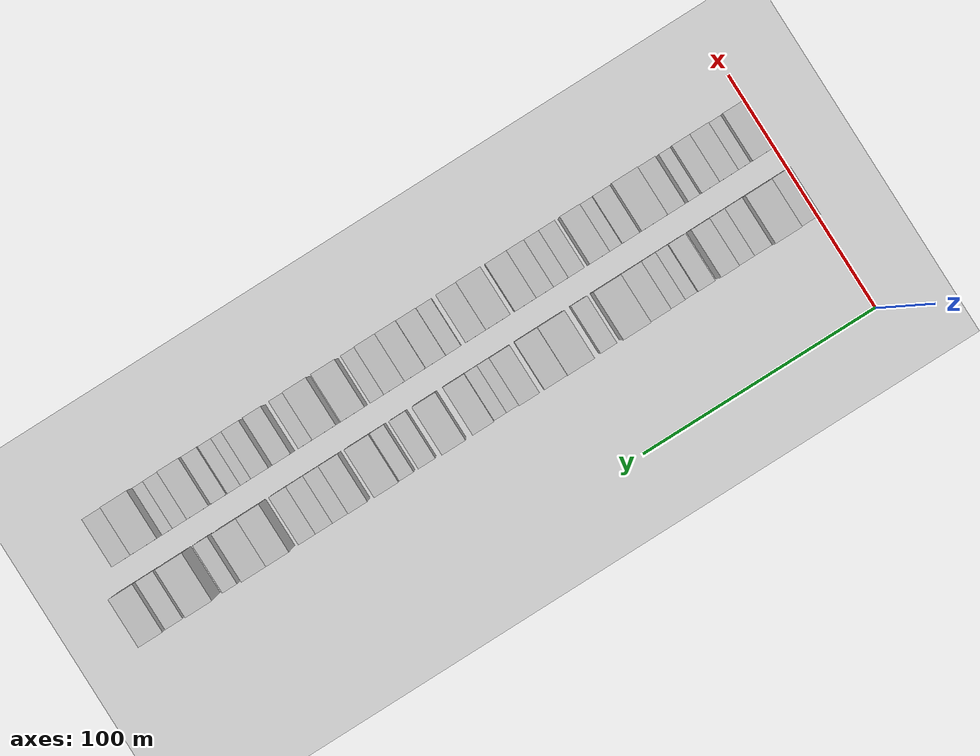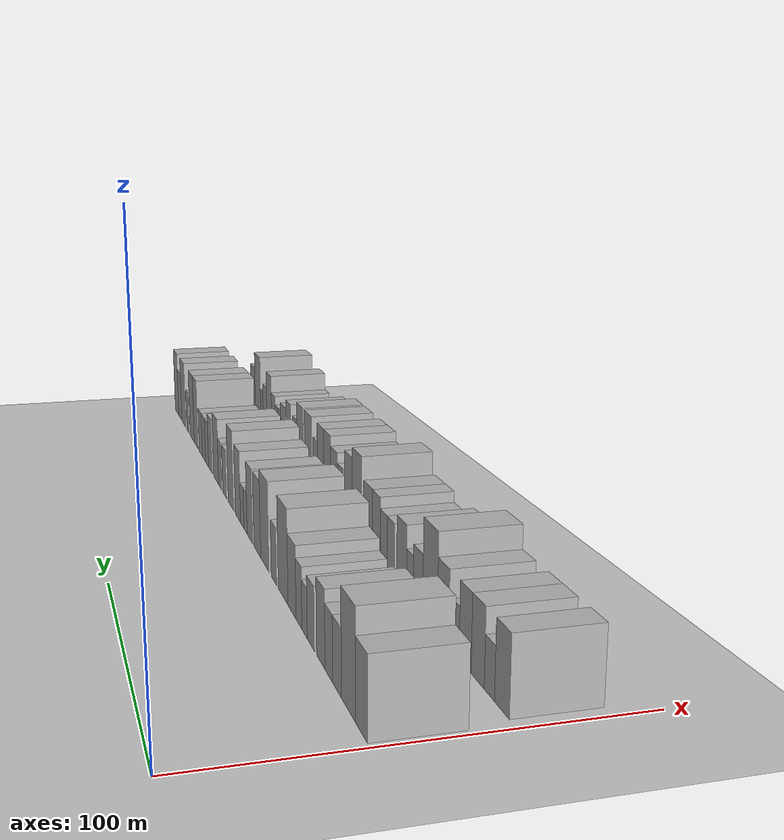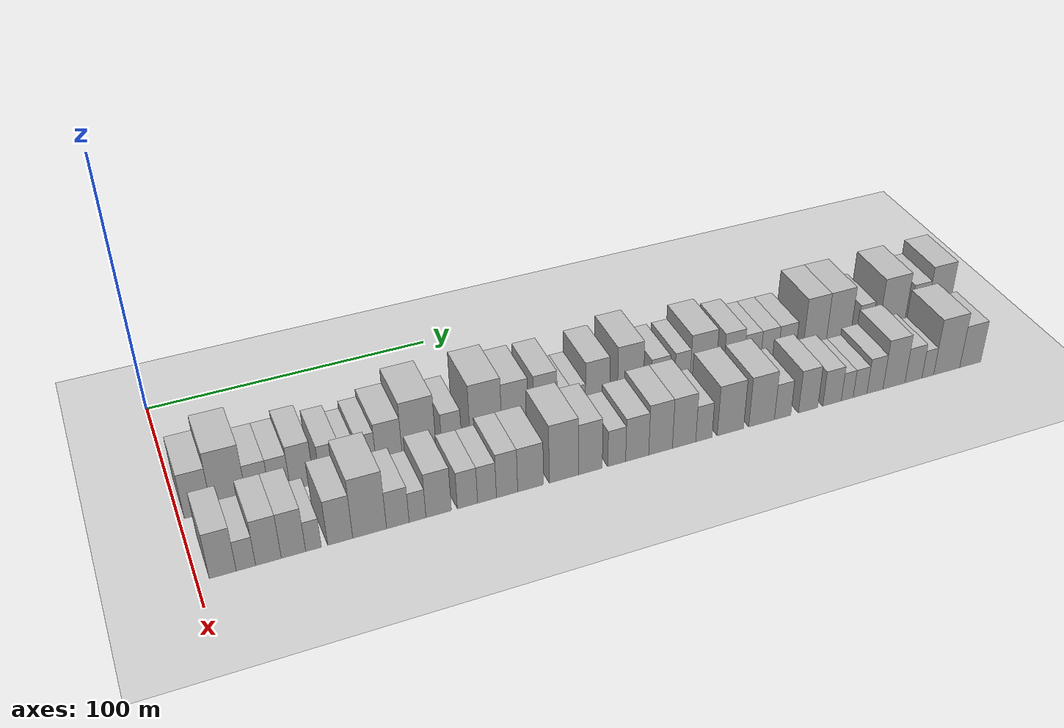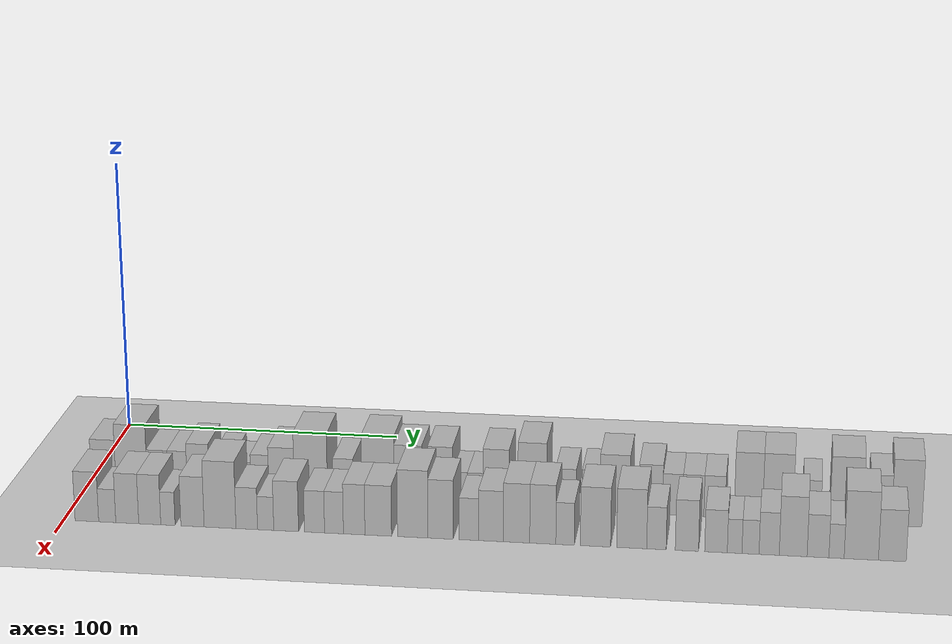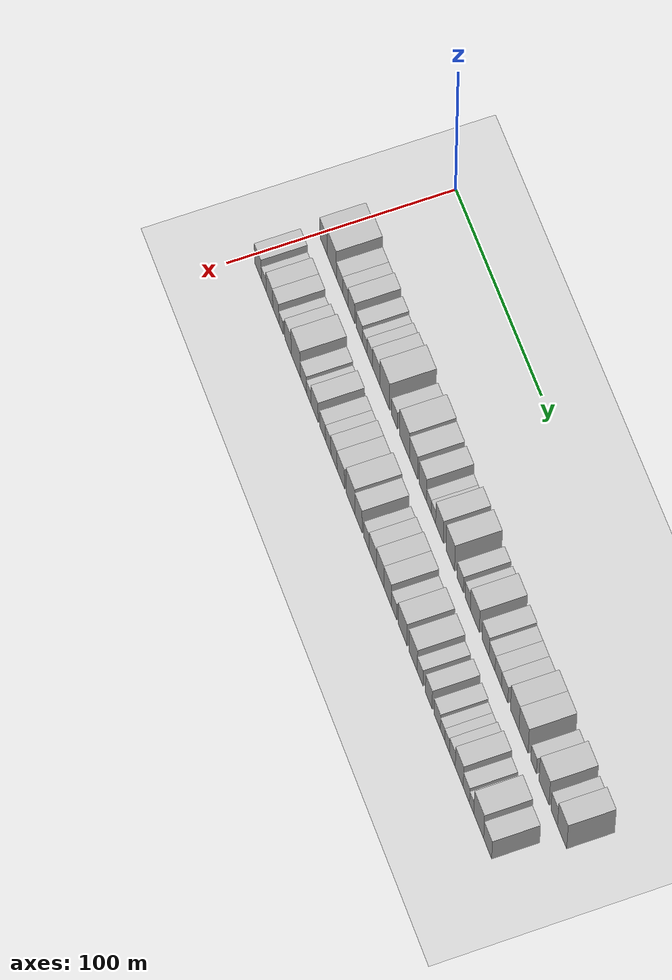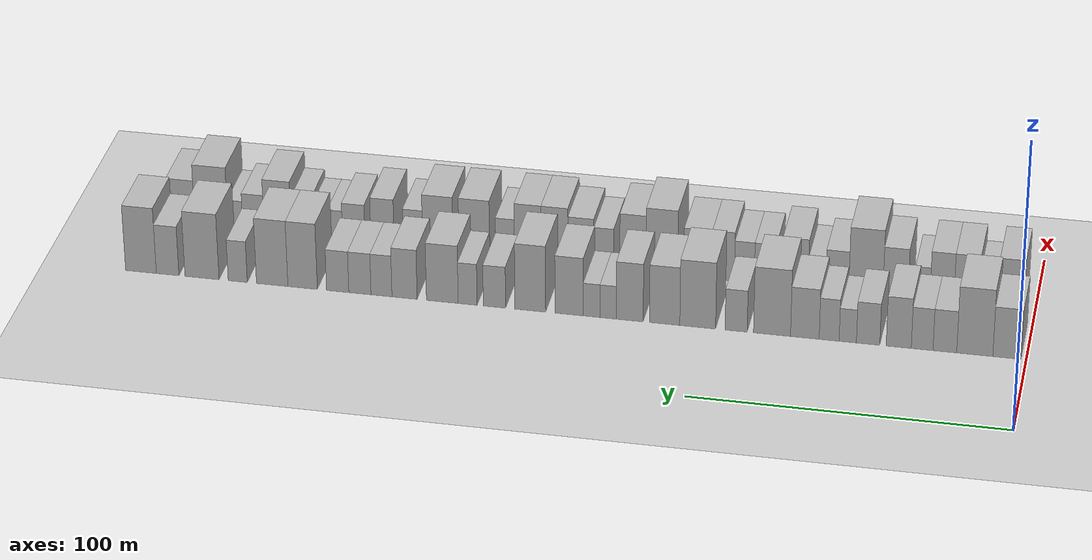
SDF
<sdf version="1.6">
 <world name="default">
  <include>
   <name>ground_plane_2</name>
   <uri>model://HANNAS_ground_plane</uri>
   <pose>100 0 0  0 0 0</pose>
  </include>
  <model name="building_34">
   <static>1</static>
   <pose>50.0000 6.1473 0 0.000000 0.000000 0.000000</pose>
   <link name="link">
    <pose>0 0 9.00 0 0 0</pose>
    <collision name="collision"><geometry><box><size>20.0000 8.7410 18.0000</size></box></geometry></collision>
    <visual name="visual">
     <cast_shadows>0</cast_shadows>
     <geometry><box><size>20.0000 8.7410 18.0000</size></box></geometry>
     <material>
      <script>
       <uri>model://HANNAS_wall/materials/scripts</uri>
       <uri>model://HANNAS_wall/materials/textures</uri>
       <name>vrc/HANNAS_wall</name>
      </script>
     </material>
    </visual>
   </link>
  </model>
  <model name="building_35">
   <static>1</static>
   <pose>50.0000 16.1103 0 0.000000 0.000000 0.000000</pose>
   <link name="link">
    <pose>0 0 12.00 0 0 0</pose>
    <collision name="collision"><geometry><box><size>20.0000 11.1851 24.0000</size></box></geometry></collision>
    <visual name="visual">
     <cast_shadows>0</cast_shadows>
     <geometry><box><size>20.0000 11.1851 24.0000</size></box></geometry>
     <material>
      <script>
       <uri>model://HANNAS_wall/materials/scripts</uri>
       <uri>model://HANNAS_wall/materials/textures</uri>
       <name>vrc/HANNAS_wall</name>
      </script>
     </material>
    </visual>
   </link>
  </model>
  <model name="building_36">
   <static>1</static>
   <pose>50.0000 25.3792 0 0.000000 0.000000 0.000000</pose>
   <link name="link">
    <pose>0 0 7.50 0 0 0</pose>
    <collision name="collision"><geometry><box><size>20.0000 7.3526 15.0000</size></box></geometry></collision>
    <visual name="visual">
     <cast_shadows>0</cast_shadows>
     <geometry><box><size>20.0000 7.3526 15.0000</size></box></geometry>
     <material>
      <script>
       <uri>model://HANNAS_wall/materials/scripts</uri>
       <uri>model://HANNAS_wall/materials/textures</uri>
       <name>vrc/HANNAS_wall</name>
      </script>
     </material>
    </visual>
   </link>
  </model>
  <model name="building_37">
   <static>1</static>
   <pose>50.0000 32.4388 0 0.000000 0.000000 0.000000</pose>
   <link name="link">
    <pose>0 0 7.50 0 0 0</pose>
    <collision name="collision"><geometry><box><size>20.0000 6.7667 15.0000</size></box></geometry></collision>
    <visual name="visual">
     <cast_shadows>0</cast_shadows>
     <geometry><box><size>20.0000 6.7667 15.0000</size></box></geometry>
     <material>
      <script>
       <uri>model://HANNAS_wall/materials/scripts</uri>
       <uri>model://HANNAS_wall/materials/textures</uri>
       <name>vrc/HANNAS_wall</name>
      </script>
     </material>
    </visual>
   </link>
  </model>
  <model name="building_38">
   <static>1</static>
   <pose>50.0000 39.7253 0 0.000000 0.000000 0.000000</pose>
   <link name="link">
    <pose>0 0 9.00 0 0 0</pose>
    <collision name="collision"><geometry><box><size>20.0000 7.8064 18.0000</size></box></geometry></collision>
    <visual name="visual">
     <cast_shadows>0</cast_shadows>
     <geometry><box><size>20.0000 7.8064 18.0000</size></box></geometry>
     <material>
      <script>
       <uri>model://HANNAS_wall/materials/scripts</uri>
       <uri>model://HANNAS_wall/materials/textures</uri>
       <name>vrc/HANNAS_wall</name>
      </script>
     </material>
    </visual>
   </link>
  </model>
  <model name="building_39">
   <static>1</static>
   <pose>50.0000 49.2765 0 0.000000 0.000000 0.000000</pose>
   <link name="link">
    <pose>0 0 7.50 0 0 0</pose>
    <collision name="collision"><geometry><box><size>20.0000 7.2959 15.0000</size></box></geometry></collision>
    <visual name="visual">
     <cast_shadows>0</cast_shadows>
     <geometry><box><size>20.0000 7.2959 15.0000</size></box></geometry>
     <material>
      <script>
       <uri>model://HANNAS_wall/materials/scripts</uri>
       <uri>model://HANNAS_wall/materials/textures</uri>
       <name>vrc/HANNAS_wall</name>
      </script>
     </material>
    </visual>
   </link>
  </model>
  <model name="building_40">
   <static>1</static>
   <pose>50.0000 55.6252 0 0.000000 0.000000 0.000000</pose>
   <link name="link">
    <pose>0 0 6.00 0 0 0</pose>
    <collision name="collision"><geometry><box><size>20.0000 5.4015 12.0000</size></box></geometry></collision>
    <visual name="visual">
     <cast_shadows>0</cast_shadows>
     <geometry><box><size>20.0000 5.4015 12.0000</size></box></geometry>
     <material>
      <script>
       <uri>model://HANNAS_wall/materials/scripts</uri>
       <uri>model://HANNAS_wall/materials/textures</uri>
       <name>vrc/HANNAS_wall</name>
      </script>
     </material>
    </visual>
   </link>
  </model>
  <model name="building_41">
   <static>1</static>
   <pose>50.0000 61.4513 0 0.000000 0.000000 0.000000</pose>
   <link name="link">
    <pose>0 0 7.50 0 0 0</pose>
    <collision name="collision"><geometry><box><size>20.0000 6.2506 15.0000</size></box></geometry></collision>
    <visual name="visual">
     <cast_shadows>0</cast_shadows>
     <geometry><box><size>20.0000 6.2506 15.0000</size></box></geometry>
     <material>
      <script>
       <uri>model://HANNAS_wall/materials/scripts</uri>
       <uri>model://HANNAS_wall/materials/textures</uri>
       <name>vrc/HANNAS_wall</name>
      </script>
     </material>
    </visual>
   </link>
  </model>
  <model name="building_42">
   <static>1</static>
   <pose>50.0000 69.0681 0 0.000000 0.000000 0.000000</pose>
   <link name="link">
    <pose>0 0 9.00 0 0 0</pose>
    <collision name="collision"><geometry><box><size>20.0000 8.9831 18.0000</size></box></geometry></collision>
    <visual name="visual">
     <cast_shadows>0</cast_shadows>
     <geometry><box><size>20.0000 8.9831 18.0000</size></box></geometry>
     <material>
      <script>
       <uri>model://HANNAS_wall/materials/scripts</uri>
       <uri>model://HANNAS_wall/materials/textures</uri>
       <name>vrc/HANNAS_wall</name>
      </script>
     </material>
    </visual>
   </link>
  </model>
  <model name="building_43">
   <static>1</static>
   <pose>50.0000 79.3780 0 0.000000 0.000000 0.000000</pose>
   <link name="link">
    <pose>0 0 12.00 0 0 0</pose>
    <collision name="collision"><geometry><box><size>20.0000 11.6367 24.0000</size></box></geometry></collision>
    <visual name="visual">
     <cast_shadows>0</cast_shadows>
     <geometry><box><size>20.0000 11.6367 24.0000</size></box></geometry>
     <material>
      <script>
       <uri>model://HANNAS_wall/materials/scripts</uri>
       <uri>model://HANNAS_wall/materials/textures</uri>
       <name>vrc/HANNAS_wall</name>
      </script>
     </material>
    </visual>
   </link>
  </model>
  <model name="building_44">
   <static>1</static>
   <pose>50.0000 90.6786 0 0.000000 0.000000 0.000000</pose>
   <link name="link">
    <pose>0 0 7.50 0 0 0</pose>
    <collision name="collision"><geometry><box><size>20.0000 6.9645 15.0000</size></box></geometry></collision>
    <visual name="visual">
     <cast_shadows>0</cast_shadows>
     <geometry><box><size>20.0000 6.9645 15.0000</size></box></geometry>
     <material>
      <script>
       <uri>model://HANNAS_wall/materials/scripts</uri>
       <uri>model://HANNAS_wall/materials/textures</uri>
       <name>vrc/HANNAS_wall</name>
      </script>
     </material>
    </visual>
   </link>
  </model>
  <model name="building_45">
   <static>1</static>
   <pose>50.0000 102.8169 0 0.000000 0.000000 0.000000</pose>
   <link name="link">
    <pose>0 0 12.00 0 0 0</pose>
    <collision name="collision"><geometry><box><size>20.0000 11.3121 24.0000</size></box></geometry></collision>
    <visual name="visual">
     <cast_shadows>0</cast_shadows>
     <geometry><box><size>20.0000 11.3121 24.0000</size></box></geometry>
     <material>
      <script>
       <uri>model://HANNAS_wall/materials/scripts</uri>
       <uri>model://HANNAS_wall/materials/textures</uri>
       <name>vrc/HANNAS_wall</name>
      </script>
     </material>
    </visual>
   </link>
  </model>
  <model name="building_46">
   <static>1</static>
   <pose>50.0000 113.2822 0 0.000000 0.000000 0.000000</pose>
   <link name="link">
    <pose>0 0 10.50 0 0 0</pose>
    <collision name="collision"><geometry><box><size>20.0000 9.6185 21.0000</size></box></geometry></collision>
    <visual name="visual">
     <cast_shadows>0</cast_shadows>
     <geometry><box><size>20.0000 9.6185 21.0000</size></box></geometry>
     <material>
      <script>
       <uri>model://HANNAS_wall/materials/scripts</uri>
       <uri>model://HANNAS_wall/materials/textures</uri>
       <name>vrc/HANNAS_wall</name>
      </script>
     </material>
    </visual>
   </link>
  </model>
  <model name="building_47">
   <static>1</static>
   <pose>50.0000 124.3903 0 0.000000 0.000000 0.000000</pose>
   <link name="link">
    <pose>0 0 10.50 0 0 0</pose>
    <collision name="collision"><geometry><box><size>20.0000 8.5976 21.0000</size></box></geometry></collision>
    <visual name="visual">
     <cast_shadows>0</cast_shadows>
     <geometry><box><size>20.0000 8.5976 21.0000</size></box></geometry>
     <material>
      <script>
       <uri>model://HANNAS_wall/materials/scripts</uri>
       <uri>model://HANNAS_wall/materials/textures</uri>
       <name>vrc/HANNAS_wall</name>
      </script>
     </material>
    </visual>
   </link>
  </model>
  <model name="building_48">
   <static>1</static>
   <pose>50.0000 131.2756 0 0.000000 0.000000 0.000000</pose>
   <link name="link">
    <pose>0 0 6.00 0 0 0</pose>
    <collision name="collision"><geometry><box><size>20.0000 5.1731 12.0000</size></box></geometry></collision>
    <visual name="visual">
     <cast_shadows>0</cast_shadows>
     <geometry><box><size>20.0000 5.1731 12.0000</size></box></geometry>
     <material>
      <script>
       <uri>model://HANNAS_wall/materials/scripts</uri>
       <uri>model://HANNAS_wall/materials/textures</uri>
       <name>vrc/HANNAS_wall</name>
      </script>
     </material>
    </visual>
   </link>
  </model>
  <model name="building_49">
   <static>1</static>
   <pose>50.0000 136.5101 0 0.000000 0.000000 0.000000</pose>
   <link name="link">
    <pose>0 0 6.00 0 0 0</pose>
    <collision name="collision"><geometry><box><size>20.0000 5.2959 12.0000</size></box></geometry></collision>
    <visual name="visual">
     <cast_shadows>0</cast_shadows>
     <geometry><box><size>20.0000 5.2959 12.0000</size></box></geometry>
     <material>
      <script>
       <uri>model://HANNAS_wall/materials/scripts</uri>
       <uri>model://HANNAS_wall/materials/textures</uri>
       <name>vrc/HANNAS_wall</name>
      </script>
     </material>
    </visual>
   </link>
  </model>
  <model name="building_50">
   <static>1</static>
   <pose>50.0000 143.6692 0 0.000000 0.000000 0.000000</pose>
   <link name="link">
    <pose>0 0 10.50 0 0 0</pose>
    <collision name="collision"><geometry><box><size>20.0000 9.0223 21.0000</size></box></geometry></collision>
    <visual name="visual">
     <cast_shadows>0</cast_shadows>
     <geometry><box><size>20.0000 9.0223 21.0000</size></box></geometry>
     <material>
      <script>
       <uri>model://HANNAS_wall/materials/scripts</uri>
       <uri>model://HANNAS_wall/materials/textures</uri>
       <name>vrc/HANNAS_wall</name>
      </script>
     </material>
    </visual>
   </link>
  </model>
  <model name="building_51">
   <static>1</static>
   <pose>50.0000 156.0944 0 0.000000 0.000000 0.000000</pose>
   <link name="link">
    <pose>0 0 12.00 0 0 0</pose>
    <collision name="collision"><geometry><box><size>20.0000 9.8281 24.0000</size></box></geometry></collision>
    <visual name="visual">
     <cast_shadows>0</cast_shadows>
     <geometry><box><size>20.0000 9.8281 24.0000</size></box></geometry>
     <material>
      <script>
       <uri>model://HANNAS_wall/materials/scripts</uri>
       <uri>model://HANNAS_wall/materials/textures</uri>
       <name>vrc/HANNAS_wall</name>
      </script>
     </material>
    </visual>
   </link>
  </model>
  <model name="building_52">
   <static>1</static>
   <pose>50.0000 167.5904 0 0.000000 0.000000 0.000000</pose>
   <link name="link">
    <pose>0 0 7.50 0 0 0</pose>
    <collision name="collision"><geometry><box><size>20.0000 7.1639 15.0000</size></box></geometry></collision>
    <visual name="visual">
     <cast_shadows>0</cast_shadows>
     <geometry><box><size>20.0000 7.1639 15.0000</size></box></geometry>
     <material>
      <script>
       <uri>model://HANNAS_wall/materials/scripts</uri>
       <uri>model://HANNAS_wall/materials/textures</uri>
       <name>vrc/HANNAS_wall</name>
      </script>
     </material>
    </visual>
   </link>
  </model>
  <model name="building_53">
   <static>1</static>
   <pose>50.0000 176.2179 0 0.000000 0.000000 0.000000</pose>
   <link name="link">
    <pose>0 0 7.50 0 0 0</pose>
    <collision name="collision"><geometry><box><size>20.0000 6.0910 15.0000</size></box></geometry></collision>
    <visual name="visual">
     <cast_shadows>0</cast_shadows>
     <geometry><box><size>20.0000 6.0910 15.0000</size></box></geometry>
     <material>
      <script>
       <uri>model://HANNAS_wall/materials/scripts</uri>
       <uri>model://HANNAS_wall/materials/textures</uri>
       <name>vrc/HANNAS_wall</name>
      </script>
     </material>
    </visual>
   </link>
  </model>
  <model name="building_54">
   <static>1</static>
   <pose>50.0000 184.3820 0 0.000000 0.000000 0.000000</pose>
   <link name="link">
    <pose>0 0 10.50 0 0 0</pose>
    <collision name="collision"><geometry><box><size>20.0000 10.2371 21.0000</size></box></geometry></collision>
    <visual name="visual">
     <cast_shadows>0</cast_shadows>
     <geometry><box><size>20.0000 10.2371 21.0000</size></box></geometry>
     <material>
      <script>
       <uri>model://HANNAS_wall/materials/scripts</uri>
       <uri>model://HANNAS_wall/materials/textures</uri>
       <name>vrc/HANNAS_wall</name>
      </script>
     </material>
    </visual>
   </link>
  </model>
  <model name="building_55">
   <static>1</static>
   <pose>50.0000 196.5752 0 0.000000 0.000000 0.000000</pose>
   <link name="link">
    <pose>0 0 9.00 0 0 0</pose>
    <collision name="collision"><geometry><box><size>20.0000 8.1494 18.0000</size></box></geometry></collision>
    <visual name="visual">
     <cast_shadows>0</cast_shadows>
     <geometry><box><size>20.0000 8.1494 18.0000</size></box></geometry>
     <material>
      <script>
       <uri>model://HANNAS_wall/materials/scripts</uri>
       <uri>model://HANNAS_wall/materials/textures</uri>
       <name>vrc/HANNAS_wall</name>
      </script>
     </material>
    </visual>
   </link>
  </model>
  <model name="building_56">
   <static>1</static>
   <pose>50.0000 204.0427 0 0.000000 0.000000 0.000000</pose>
   <link name="link">
    <pose>0 0 7.50 0 0 0</pose>
    <collision name="collision"><geometry><box><size>20.0000 6.7856 15.0000</size></box></geometry></collision>
    <visual name="visual">
     <cast_shadows>0</cast_shadows>
     <geometry><box><size>20.0000 6.7856 15.0000</size></box></geometry>
     <material>
      <script>
       <uri>model://HANNAS_wall/materials/scripts</uri>
       <uri>model://HANNAS_wall/materials/textures</uri>
       <name>vrc/HANNAS_wall</name>
      </script>
     </material>
    </visual>
   </link>
  </model>
  <model name="building_57">
   <static>1</static>
   <pose>50.0000 211.0409 0 0.000000 0.000000 0.000000</pose>
   <link name="link">
    <pose>0 0 7.50 0 0 0</pose>
    <collision name="collision"><geometry><box><size>20.0000 7.2108 15.0000</size></box></geometry></collision>
    <visual name="visual">
     <cast_shadows>0</cast_shadows>
     <geometry><box><size>20.0000 7.2108 15.0000</size></box></geometry>
     <material>
      <script>
       <uri>model://HANNAS_wall/materials/scripts</uri>
       <uri>model://HANNAS_wall/materials/textures</uri>
       <name>vrc/HANNAS_wall</name>
      </script>
     </material>
    </visual>
   </link>
  </model>
  <model name="building_58">
   <static>1</static>
   <pose>50.0000 218.2572 0 0.000000 0.000000 0.000000</pose>
   <link name="link">
    <pose>0 0 7.50 0 0 0</pose>
    <collision name="collision"><geometry><box><size>20.0000 7.2218 15.0000</size></box></geometry></collision>
    <visual name="visual">
     <cast_shadows>0</cast_shadows>
     <geometry><box><size>20.0000 7.2218 15.0000</size></box></geometry>
     <material>
      <script>
       <uri>model://HANNAS_wall/materials/scripts</uri>
       <uri>model://HANNAS_wall/materials/textures</uri>
       <name>vrc/HANNAS_wall</name>
      </script>
     </material>
    </visual>
   </link>
  </model>
  <model name="building_59">
   <static>1</static>
   <pose>50.0000 229.6732 0 0.000000 0.000000 0.000000</pose>
   <link name="link">
    <pose>0 0 12.00 0 0 0</pose>
    <collision name="collision"><geometry><box><size>20.0000 9.6101 24.0000</size></box></geometry></collision>
    <visual name="visual">
     <cast_shadows>0</cast_shadows>
     <geometry><box><size>20.0000 9.6101 24.0000</size></box></geometry>
     <material>
      <script>
       <uri>model://HANNAS_wall/materials/scripts</uri>
       <uri>model://HANNAS_wall/materials/textures</uri>
       <name>vrc/HANNAS_wall</name>
      </script>
     </material>
    </visual>
   </link>
  </model>
  <model name="building_60">
   <static>1</static>
   <pose>50.0000 239.6133 0 0.000000 0.000000 0.000000</pose>
   <link name="link">
    <pose>0 0 12.00 0 0 0</pose>
    <collision name="collision"><geometry><box><size>20.0000 10.2700 24.0000</size></box></geometry></collision>
    <visual name="visual">
     <cast_shadows>0</cast_shadows>
     <geometry><box><size>20.0000 10.2700 24.0000</size></box></geometry>
     <material>
      <script>
       <uri>model://HANNAS_wall/materials/scripts</uri>
       <uri>model://HANNAS_wall/materials/textures</uri>
       <name>vrc/HANNAS_wall</name>
      </script>
     </material>
    </visual>
   </link>
  </model>
  <model name="building_61">
   <static>1</static>
   <pose>50.0000 250.8751 0 0.000000 0.000000 0.000000</pose>
   <link name="link">
    <pose>0 0 7.50 0 0 0</pose>
    <collision name="collision"><geometry><box><size>20.0000 6.2536 15.0000</size></box></geometry></collision>
    <visual name="visual">
     <cast_shadows>0</cast_shadows>
     <geometry><box><size>20.0000 6.2536 15.0000</size></box></geometry>
     <material>
      <script>
       <uri>model://HANNAS_wall/materials/scripts</uri>
       <uri>model://HANNAS_wall/materials/textures</uri>
       <name>vrc/HANNAS_wall</name>
      </script>
     </material>
    </visual>
   </link>
  </model>
  <model name="building_62">
   <static>1</static>
   <pose>50.0000 262.5976 0 0.000000 0.000000 0.000000</pose>
   <link name="link">
    <pose>0 0 12.00 0 0 0</pose>
    <collision name="collision"><geometry><box><size>20.0000 11.1915 24.0000</size></box></geometry></collision>
    <visual name="visual">
     <cast_shadows>0</cast_shadows>
     <geometry><box><size>20.0000 11.1915 24.0000</size></box></geometry>
     <material>
      <script>
       <uri>model://HANNAS_wall/materials/scripts</uri>
       <uri>model://HANNAS_wall/materials/textures</uri>
       <name>vrc/HANNAS_wall</name>
      </script>
     </material>
    </visual>
   </link>
  </model>
  <model name="building_63">
   <static>1</static>
   <pose>50.0000 273.9101 0 0.000000 0.000000 0.000000</pose>
   <link name="link">
    <pose>0 0 9.00 0 0 0</pose>
    <collision name="collision"><geometry><box><size>20.0000 7.4335 18.0000</size></box></geometry></collision>
    <visual name="visual">
     <cast_shadows>0</cast_shadows>
     <geometry><box><size>20.0000 7.4335 18.0000</size></box></geometry>
     <material>
      <script>
       <uri>model://HANNAS_wall/materials/scripts</uri>
       <uri>model://HANNAS_wall/materials/textures</uri>
       <name>vrc/HANNAS_wall</name>
      </script>
     </material>
    </visual>
   </link>
  </model>
  <model name="building_64">
   <static>1</static>
   <pose>50.0000 282.6884 0 0.000000 0.000000 0.000000</pose>
   <link name="link">
    <pose>0 0 12.00 0 0 0</pose>
    <collision name="collision"><geometry><box><size>20.0000 10.1232 24.0000</size></box></geometry></collision>
    <visual name="visual">
     <cast_shadows>0</cast_shadows>
     <geometry><box><size>20.0000 10.1232 24.0000</size></box></geometry>
     <material>
      <script>
       <uri>model://HANNAS_wall/materials/scripts</uri>
       <uri>model://HANNAS_wall/materials/textures</uri>
       <name>vrc/HANNAS_wall</name>
      </script>
     </material>
    </visual>
   </link>
  </model>
  <model name="building_97">
   <static>1</static>
   <pose>79.0000 7.9420 0 0.000000 0.000000 0.000000</pose>
   <link name="link">
    <pose>0 0 9.00 0 0 0</pose>
    <collision name="collision"><geometry><box><size>20.0000 8.1596 18.0000</size></box></geometry></collision>
    <visual name="visual">
     <cast_shadows>0</cast_shadows>
     <geometry><box><size>20.0000 8.1596 18.0000</size></box></geometry>
     <material>
      <script>
       <uri>model://HANNAS_wall/materials/scripts</uri>
       <uri>model://HANNAS_wall/materials/textures</uri>
       <name>vrc/HANNAS_wall</name>
      </script>
     </material>
    </visual>
   </link>
  </model>
  <model name="building_98">
   <static>1</static>
   <pose>79.0000 14.9789 0 0.000000 0.000000 0.000000</pose>
   <link name="link">
    <pose>0 0 6.00 0 0 0</pose>
    <collision name="collision"><geometry><box><size>20.0000 5.9142 12.0000</size></box></geometry></collision>
    <visual name="visual">
     <cast_shadows>0</cast_shadows>
     <geometry><box><size>20.0000 5.9142 12.0000</size></box></geometry>
     <material>
      <script>
       <uri>model://HANNAS_wall/materials/scripts</uri>
       <uri>model://HANNAS_wall/materials/textures</uri>
       <name>vrc/HANNAS_wall</name>
      </script>
     </material>
    </visual>
   </link>
  </model>
  <model name="building_99">
   <static>1</static>
   <pose>79.0000 21.8949 0 0.000000 0.000000 0.000000</pose>
   <link name="link">
    <pose>0 0 9.00 0 0 0</pose>
    <collision name="collision"><geometry><box><size>20.0000 7.9178 18.0000</size></box></geometry></collision>
    <visual name="visual">
     <cast_shadows>0</cast_shadows>
     <geometry><box><size>20.0000 7.9178 18.0000</size></box></geometry>
     <material>
      <script>
       <uri>model://HANNAS_wall/materials/scripts</uri>
       <uri>model://HANNAS_wall/materials/textures</uri>
       <name>vrc/HANNAS_wall</name>
      </script>
     </material>
    </visual>
   </link>
  </model>
  <model name="building_100">
   <static>1</static>
   <pose>79.0000 29.6515 0 0.000000 0.000000 0.000000</pose>
   <link name="link">
    <pose>0 0 9.00 0 0 0</pose>
    <collision name="collision"><geometry><box><size>20.0000 7.5953 18.0000</size></box></geometry></collision>
    <visual name="visual">
     <cast_shadows>0</cast_shadows>
     <geometry><box><size>20.0000 7.5953 18.0000</size></box></geometry>
     <material>
      <script>
       <uri>model://HANNAS_wall/materials/scripts</uri>
       <uri>model://HANNAS_wall/materials/textures</uri>
       <name>vrc/HANNAS_wall</name>
      </script>
     </material>
    </visual>
   </link>
  </model>
  <model name="building_101">
   <static>1</static>
   <pose>79.0000 35.9093 0 0.000000 0.000000 0.000000</pose>
   <link name="link">
    <pose>0 0 6.00 0 0 0</pose>
    <collision name="collision"><geometry><box><size>20.0000 4.9202 12.0000</size></box></geometry></collision>
    <visual name="visual">
     <cast_shadows>0</cast_shadows>
     <geometry><box><size>20.0000 4.9202 12.0000</size></box></geometry>
     <material>
      <script>
       <uri>model://HANNAS_wall/materials/scripts</uri>
       <uri>model://HANNAS_wall/materials/textures</uri>
       <name>vrc/HANNAS_wall</name>
      </script>
     </material>
    </visual>
   </link>
  </model>
  <model name="building_102">
   <static>1</static>
   <pose>79.0000 44.3604 0 0.000000 0.000000 0.000000</pose>
   <link name="link">
    <pose>0 0 9.00 0 0 0</pose>
    <collision name="collision"><geometry><box><size>20.0000 7.9821 18.0000</size></box></geometry></collision>
    <visual name="visual">
     <cast_shadows>0</cast_shadows>
     <geometry><box><size>20.0000 7.9821 18.0000</size></box></geometry>
     <material>
      <script>
       <uri>model://HANNAS_wall/materials/scripts</uri>
       <uri>model://HANNAS_wall/materials/textures</uri>
       <name>vrc/HANNAS_wall</name>
      </script>
     </material>
    </visual>
   </link>
  </model>
  <model name="building_103">
   <static>1</static>
   <pose>79.0000 53.7942 0 0.000000 0.000000 0.000000</pose>
   <link name="link">
    <pose>0 0 12.00 0 0 0</pose>
    <collision name="collision"><geometry><box><size>20.0000 10.8854 24.0000</size></box></geometry></collision>
    <visual name="visual">
     <cast_shadows>0</cast_shadows>
     <geometry><box><size>20.0000 10.8854 24.0000</size></box></geometry>
     <material>
      <script>
       <uri>model://HANNAS_wall/materials/scripts</uri>
       <uri>model://HANNAS_wall/materials/textures</uri>
       <name>vrc/HANNAS_wall</name>
      </script>
     </material>
    </visual>
   </link>
  </model>
  <model name="building_104">
   <static>1</static>
   <pose>79.0000 62.9185 0 0.000000 0.000000 0.000000</pose>
   <link name="link">
    <pose>0 0 7.50 0 0 0</pose>
    <collision name="collision"><geometry><box><size>20.0000 7.3632 15.0000</size></box></geometry></collision>
    <visual name="visual">
     <cast_shadows>0</cast_shadows>
     <geometry><box><size>20.0000 7.3632 15.0000</size></box></geometry>
     <material>
      <script>
       <uri>model://HANNAS_wall/materials/scripts</uri>
       <uri>model://HANNAS_wall/materials/textures</uri>
       <name>vrc/HANNAS_wall</name>
      </script>
     </material>
    </visual>
   </link>
  </model>
  <model name="building_105">
   <static>1</static>
   <pose>79.0000 69.3667 0 0.000000 0.000000 0.000000</pose>
   <link name="link">
    <pose>0 0 6.00 0 0 0</pose>
    <collision name="collision"><geometry><box><size>20.0000 5.5331 12.0000</size></box></geometry></collision>
    <visual name="visual">
     <cast_shadows>0</cast_shadows>
     <geometry><box><size>20.0000 5.5331 12.0000</size></box></geometry>
     <material>
      <script>
       <uri>model://HANNAS_wall/materials/scripts</uri>
       <uri>model://HANNAS_wall/materials/textures</uri>
       <name>vrc/HANNAS_wall</name>
      </script>
     </material>
    </visual>
   </link>
  </model>
  <model name="building_106">
   <static>1</static>
   <pose>79.0000 76.3560 0 0.000000 0.000000 0.000000</pose>
   <link name="link">
    <pose>0 0 9.00 0 0 0</pose>
    <collision name="collision"><geometry><box><size>20.0000 8.4454 18.0000</size></box></geometry></collision>
    <visual name="visual">
     <cast_shadows>0</cast_shadows>
     <geometry><box><size>20.0000 8.4454 18.0000</size></box></geometry>
     <material>
      <script>
       <uri>model://HANNAS_wall/materials/scripts</uri>
       <uri>model://HANNAS_wall/materials/textures</uri>
       <name>vrc/HANNAS_wall</name>
      </script>
     </material>
    </visual>
   </link>
  </model>
  <model name="building_107">
   <static>1</static>
   <pose>79.0000 85.9937 0 0.000000 0.000000 0.000000</pose>
   <link name="link">
    <pose>0 0 7.50 0 0 0</pose>
    <collision name="collision"><geometry><box><size>20.0000 6.8301 15.0000</size></box></geometry></collision>
    <visual name="visual">
     <cast_shadows>0</cast_shadows>
     <geometry><box><size>20.0000 6.8301 15.0000</size></box></geometry>
     <material>
      <script>
       <uri>model://HANNAS_wall/materials/scripts</uri>
       <uri>model://HANNAS_wall/materials/textures</uri>
       <name>vrc/HANNAS_wall</name>
      </script>
     </material>
    </visual>
   </link>
  </model>
  <model name="building_108">
   <static>1</static>
   <pose>79.0000 92.6036 0 0.000000 0.000000 0.000000</pose>
   <link name="link">
    <pose>0 0 7.50 0 0 0</pose>
    <collision name="collision"><geometry><box><size>20.0000 6.3898 15.0000</size></box></geometry></collision>
    <visual name="visual">
     <cast_shadows>0</cast_shadows>
     <geometry><box><size>20.0000 6.3898 15.0000</size></box></geometry>
     <material>
      <script>
       <uri>model://HANNAS_wall/materials/scripts</uri>
       <uri>model://HANNAS_wall/materials/textures</uri>
       <name>vrc/HANNAS_wall</name>
      </script>
     </material>
    </visual>
   </link>
  </model>
  <model name="building_109">
   <static>1</static>
   <pose>79.0000 99.4399 0 0.000000 0.000000 0.000000</pose>
   <link name="link">
    <pose>0 0 9.00 0 0 0</pose>
    <collision name="collision"><geometry><box><size>20.0000 7.2828 18.0000</size></box></geometry></collision>
    <visual name="visual">
     <cast_shadows>0</cast_shadows>
     <geometry><box><size>20.0000 7.2828 18.0000</size></box></geometry>
     <material>
      <script>
       <uri>model://HANNAS_wall/materials/scripts</uri>
       <uri>model://HANNAS_wall/materials/textures</uri>
       <name>vrc/HANNAS_wall</name>
      </script>
     </material>
    </visual>
   </link>
  </model>
  <model name="building_110">
   <static>1</static>
   <pose>79.0000 107.5697 0 0.000000 0.000000 0.000000</pose>
   <link name="link">
    <pose>0 0 9.00 0 0 0</pose>
    <collision name="collision"><geometry><box><size>20.0000 8.9768 18.0000</size></box></geometry></collision>
    <visual name="visual">
     <cast_shadows>0</cast_shadows>
     <geometry><box><size>20.0000 8.9768 18.0000</size></box></geometry>
     <material>
      <script>
       <uri>model://HANNAS_wall/materials/scripts</uri>
       <uri>model://HANNAS_wall/materials/textures</uri>
       <name>vrc/HANNAS_wall</name>
      </script>
     </material>
    </visual>
   </link>
  </model>
  <model name="building_111">
   <static>1</static>
   <pose>79.0000 119.1903 0 0.000000 0.000000 0.000000</pose>
   <link name="link">
    <pose>0 0 12.00 0 0 0</pose>
    <collision name="collision"><geometry><box><size>20.0000 10.2643 24.0000</size></box></geometry></collision>
    <visual name="visual">
     <cast_shadows>0</cast_shadows>
     <geometry><box><size>20.0000 10.2643 24.0000</size></box></geometry>
     <material>
      <script>
       <uri>model://HANNAS_wall/materials/scripts</uri>
       <uri>model://HANNAS_wall/materials/textures</uri>
       <name>vrc/HANNAS_wall</name>
      </script>
     </material>
    </visual>
   </link>
  </model>
  <model name="building_112">
   <static>1</static>
   <pose>79.0000 128.5553 0 0.000000 0.000000 0.000000</pose>
   <link name="link">
    <pose>0 0 10.50 0 0 0</pose>
    <collision name="collision"><geometry><box><size>20.0000 8.4657 21.0000</size></box></geometry></collision>
    <visual name="visual">
     <cast_shadows>0</cast_shadows>
     <geometry><box><size>20.0000 8.4657 21.0000</size></box></geometry>
     <material>
      <script>
       <uri>model://HANNAS_wall/materials/scripts</uri>
       <uri>model://HANNAS_wall/materials/textures</uri>
       <name>vrc/HANNAS_wall</name>
      </script>
     </material>
    </visual>
   </link>
  </model>
  <model name="building_113">
   <static>1</static>
   <pose>79.0000 138.0018 0 0.000000 0.000000 0.000000</pose>
   <link name="link">
    <pose>0 0 7.50 0 0 0</pose>
    <collision name="collision"><geometry><box><size>20.0000 6.4274 15.0000</size></box></geometry></collision>
    <visual name="visual">
     <cast_shadows>0</cast_shadows>
     <geometry><box><size>20.0000 6.4274 15.0000</size></box></geometry>
     <material>
      <script>
       <uri>model://HANNAS_wall/materials/scripts</uri>
       <uri>model://HANNAS_wall/materials/textures</uri>
       <name>vrc/HANNAS_wall</name>
      </script>
     </material>
    </visual>
   </link>
  </model>
  <model name="building_114">
   <static>1</static>
   <pose>79.0000 145.4175 0 0.000000 0.000000 0.000000</pose>
   <link name="link">
    <pose>0 0 9.00 0 0 0</pose>
    <collision name="collision"><geometry><box><size>20.0000 8.4040 18.0000</size></box></geometry></collision>
    <visual name="visual">
     <cast_shadows>0</cast_shadows>
     <geometry><box><size>20.0000 8.4040 18.0000</size></box></geometry>
     <material>
      <script>
       <uri>model://HANNAS_wall/materials/scripts</uri>
       <uri>model://HANNAS_wall/materials/textures</uri>
       <name>vrc/HANNAS_wall</name>
      </script>
     </material>
    </visual>
   </link>
  </model>
  <model name="building_115">
   <static>1</static>
   <pose>79.0000 153.9886 0 0.000000 0.000000 0.000000</pose>
   <link name="link">
    <pose>0 0 10.50 0 0 0</pose>
    <collision name="collision"><geometry><box><size>20.0000 8.7382 21.0000</size></box></geometry></collision>
    <visual name="visual">
     <cast_shadows>0</cast_shadows>
     <geometry><box><size>20.0000 8.7382 21.0000</size></box></geometry>
     <material>
      <script>
       <uri>model://HANNAS_wall/materials/scripts</uri>
       <uri>model://HANNAS_wall/materials/textures</uri>
       <name>vrc/HANNAS_wall</name>
      </script>
     </material>
    </visual>
   </link>
  </model>
  <model name="building_116">
   <static>1</static>
   <pose>79.0000 162.7054 0 0.000000 0.000000 0.000000</pose>
   <link name="link">
    <pose>0 0 10.50 0 0 0</pose>
    <collision name="collision"><geometry><box><size>20.0000 8.6954 21.0000</size></box></geometry></collision>
    <visual name="visual">
     <cast_shadows>0</cast_shadows>
     <geometry><box><size>20.0000 8.6954 21.0000</size></box></geometry>
     <material>
      <script>
       <uri>model://HANNAS_wall/materials/scripts</uri>
       <uri>model://HANNAS_wall/materials/textures</uri>
       <name>vrc/HANNAS_wall</name>
      </script>
     </material>
    </visual>
   </link>
  </model>
  <model name="building_117">
   <static>1</static>
   <pose>79.0000 170.1164 0 0.000000 0.000000 0.000000</pose>
   <link name="link">
    <pose>0 0 7.50 0 0 0</pose>
    <collision name="collision"><geometry><box><size>20.0000 6.1265 15.0000</size></box></geometry></collision>
    <visual name="visual">
     <cast_shadows>0</cast_shadows>
     <geometry><box><size>20.0000 6.1265 15.0000</size></box></geometry>
     <material>
      <script>
       <uri>model://HANNAS_wall/materials/scripts</uri>
       <uri>model://HANNAS_wall/materials/textures</uri>
       <name>vrc/HANNAS_wall</name>
      </script>
     </material>
    </visual>
   </link>
  </model>
  <model name="building_118">
   <static>1</static>
   <pose>79.0000 180.1923 0 0.000000 0.000000 0.000000</pose>
   <link name="link">
    <pose>0 0 10.50 0 0 0</pose>
    <collision name="collision"><geometry><box><size>20.0000 10.0252 21.0000</size></box></geometry></collision>
    <visual name="visual">
     <cast_shadows>0</cast_shadows>
     <geometry><box><size>20.0000 10.0252 21.0000</size></box></geometry>
     <material>
      <script>
       <uri>model://HANNAS_wall/materials/scripts</uri>
       <uri>model://HANNAS_wall/materials/textures</uri>
       <name>vrc/HANNAS_wall</name>
      </script>
     </material>
    </visual>
   </link>
  </model>
  <model name="building_119">
   <static>1</static>
   <pose>79.0000 192.1655 0 0.000000 0.000000 0.000000</pose>
   <link name="link">
    <pose>0 0 10.50 0 0 0</pose>
    <collision name="collision"><geometry><box><size>20.0000 9.9213 21.0000</size></box></geometry></collision>
    <visual name="visual">
     <cast_shadows>0</cast_shadows>
     <geometry><box><size>20.0000 9.9213 21.0000</size></box></geometry>
     <material>
      <script>
       <uri>model://HANNAS_wall/materials/scripts</uri>
       <uri>model://HANNAS_wall/materials/textures</uri>
       <name>vrc/HANNAS_wall</name>
      </script>
     </material>
    </visual>
   </link>
  </model>
  <model name="building_120">
   <static>1</static>
   <pose>79.0000 200.3253 0 0.000000 0.000000 0.000000</pose>
   <link name="link">
    <pose>0 0 7.50 0 0 0</pose>
    <collision name="collision"><geometry><box><size>20.0000 6.3984 15.0000</size></box></geometry></collision>
    <visual name="visual">
     <cast_shadows>0</cast_shadows>
     <geometry><box><size>20.0000 6.3984 15.0000</size></box></geometry>
     <material>
      <script>
       <uri>model://HANNAS_wall/materials/scripts</uri>
       <uri>model://HANNAS_wall/materials/textures</uri>
       <name>vrc/HANNAS_wall</name>
      </script>
     </material>
    </visual>
   </link>
  </model>
  <model name="building_121">
   <static>1</static>
   <pose>79.0000 210.3554 0 0.000000 0.000000 0.000000</pose>
   <link name="link">
    <pose>0 0 9.00 0 0 0</pose>
    <collision name="collision"><geometry><box><size>20.0000 7.6616 18.0000</size></box></geometry></collision>
    <visual name="visual">
     <cast_shadows>0</cast_shadows>
     <geometry><box><size>20.0000 7.6616 18.0000</size></box></geometry>
     <material>
      <script>
       <uri>model://HANNAS_wall/materials/scripts</uri>
       <uri>model://HANNAS_wall/materials/textures</uri>
       <name>vrc/HANNAS_wall</name>
      </script>
     </material>
    </visual>
   </link>
  </model>
  <model name="building_122">
   <static>1</static>
   <pose>79.0000 219.8918 0 0.000000 0.000000 0.000000</pose>
   <link name="link">
    <pose>0 0 7.50 0 0 0</pose>
    <collision name="collision"><geometry><box><size>20.0000 7.4113 15.0000</size></box></geometry></collision>
    <visual name="visual">
     <cast_shadows>0</cast_shadows>
     <geometry><box><size>20.0000 7.4113 15.0000</size></box></geometry>
     <material>
      <script>
       <uri>model://HANNAS_wall/materials/scripts</uri>
       <uri>model://HANNAS_wall/materials/textures</uri>
       <name>vrc/HANNAS_wall</name>
      </script>
     </material>
    </visual>
   </link>
  </model>
  <model name="building_123">
   <static>1</static>
   <pose>79.0000 225.9982 0 0.000000 0.000000 0.000000</pose>
   <link name="link">
    <pose>0 0 6.00 0 0 0</pose>
    <collision name="collision"><geometry><box><size>20.0000 4.8014 12.0000</size></box></geometry></collision>
    <visual name="visual">
     <cast_shadows>0</cast_shadows>
     <geometry><box><size>20.0000 4.8014 12.0000</size></box></geometry>
     <material>
      <script>
       <uri>model://HANNAS_wall/materials/scripts</uri>
       <uri>model://HANNAS_wall/materials/textures</uri>
       <name>vrc/HANNAS_wall</name>
      </script>
     </material>
    </visual>
   </link>
  </model>
  <model name="building_124">
   <static>1</static>
   <pose>79.0000 231.1860 0 0.000000 0.000000 0.000000</pose>
   <link name="link">
    <pose>0 0 6.00 0 0 0</pose>
    <collision name="collision"><geometry><box><size>20.0000 5.5741 12.0000</size></box></geometry></collision>
    <visual name="visual">
     <cast_shadows>0</cast_shadows>
     <geometry><box><size>20.0000 5.5741 12.0000</size></box></geometry>
     <material>
      <script>
       <uri>model://HANNAS_wall/materials/scripts</uri>
       <uri>model://HANNAS_wall/materials/textures</uri>
       <name>vrc/HANNAS_wall</name>
      </script>
     </material>
    </visual>
   </link>
  </model>
  <model name="building_125">
   <static>1</static>
   <pose>79.0000 237.2663 0 0.000000 0.000000 0.000000</pose>
   <link name="link">
    <pose>0 0 7.50 0 0 0</pose>
    <collision name="collision"><geometry><box><size>20.0000 6.5866 15.0000</size></box></geometry></collision>
    <visual name="visual">
     <cast_shadows>0</cast_shadows>
     <geometry><box><size>20.0000 6.5866 15.0000</size></box></geometry>
     <material>
      <script>
       <uri>model://HANNAS_wall/materials/scripts</uri>
       <uri>model://HANNAS_wall/materials/textures</uri>
       <name>vrc/HANNAS_wall</name>
      </script>
     </material>
    </visual>
   </link>
  </model>
  <model name="building_126">
   <static>1</static>
   <pose>79.0000 245.0961 0 0.000000 0.000000 0.000000</pose>
   <link name="link">
    <pose>0 0 10.50 0 0 0</pose>
    <collision name="collision"><geometry><box><size>20.0000 9.0730 21.0000</size></box></geometry></collision>
    <visual name="visual">
     <cast_shadows>0</cast_shadows>
     <geometry><box><size>20.0000 9.0730 21.0000</size></box></geometry>
     <material>
      <script>
       <uri>model://HANNAS_wall/materials/scripts</uri>
       <uri>model://HANNAS_wall/materials/textures</uri>
       <name>vrc/HANNAS_wall</name>
      </script>
     </material>
    </visual>
   </link>
  </model>
  <model name="building_127">
   <static>1</static>
   <pose>79.0000 253.1770 0 0.000000 0.000000 0.000000</pose>
   <link name="link">
    <pose>0 0 7.50 0 0 0</pose>
    <collision name="collision"><geometry><box><size>20.0000 7.0889 15.0000</size></box></geometry></collision>
    <visual name="visual">
     <cast_shadows>0</cast_shadows>
     <geometry><box><size>20.0000 7.0889 15.0000</size></box></geometry>
     <material>
      <script>
       <uri>model://HANNAS_wall/materials/scripts</uri>
       <uri>model://HANNAS_wall/materials/textures</uri>
       <name>vrc/HANNAS_wall</name>
      </script>
     </material>
    </visual>
   </link>
  </model>
  <model name="building_128">
   <static>1</static>
   <pose>79.0000 259.1900 0 0.000000 0.000000 0.000000</pose>
   <link name="link">
    <pose>0 0 6.00 0 0 0</pose>
    <collision name="collision"><geometry><box><size>20.0000 4.9372 12.0000</size></box></geometry></collision>
    <visual name="visual">
     <cast_shadows>0</cast_shadows>
     <geometry><box><size>20.0000 4.9372 12.0000</size></box></geometry>
     <material>
      <script>
       <uri>model://HANNAS_wall/materials/scripts</uri>
       <uri>model://HANNAS_wall/materials/textures</uri>
       <name>vrc/HANNAS_wall</name>
      </script>
     </material>
    </visual>
   </link>
  </model>
  <model name="building_129">
   <static>1</static>
   <pose>79.0000 267.2043 0 0.000000 0.000000 0.000000</pose>
   <link name="link">
    <pose>0 0 12.00 0 0 0</pose>
    <collision name="collision"><geometry><box><size>20.0000 11.0913 24.0000</size></box></geometry></collision>
    <visual name="visual">
     <cast_shadows>0</cast_shadows>
     <geometry><box><size>20.0000 11.0913 24.0000</size></box></geometry>
     <material>
      <script>
       <uri>model://HANNAS_wall/materials/scripts</uri>
       <uri>model://HANNAS_wall/materials/textures</uri>
       <name>vrc/HANNAS_wall</name>
      </script>
     </material>
    </visual>
   </link>
  </model>
  <model name="building_130">
   <static>1</static>
   <pose>79.0000 277.2449 0 0.000000 0.000000 0.000000</pose>
   <link name="link">
    <pose>0 0 9.00 0 0 0</pose>
    <collision name="collision"><geometry><box><size>20.0000 8.9898 18.0000</size></box></geometry></collision>
    <visual name="visual">
     <cast_shadows>0</cast_shadows>
     <geometry><box><size>20.0000 8.9898 18.0000</size></box></geometry>
     <material>
      <script>
       <uri>model://HANNAS_wall/materials/scripts</uri>
       <uri>model://HANNAS_wall/materials/textures</uri>
       <name>vrc/HANNAS_wall</name>
      </script>
     </material>
    </visual>
   </link>
  </model>
 </world>
</sdf>
